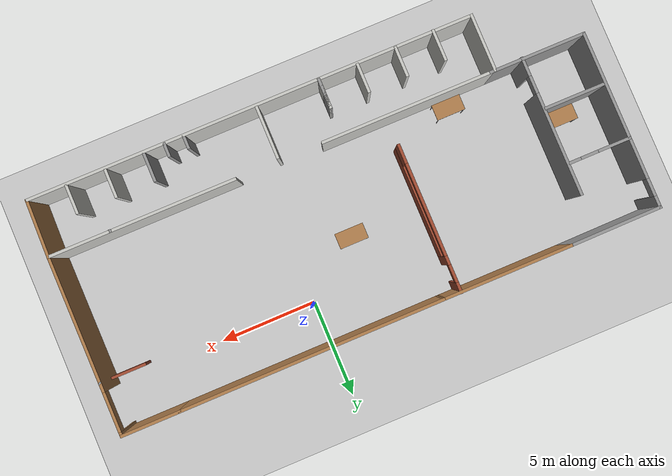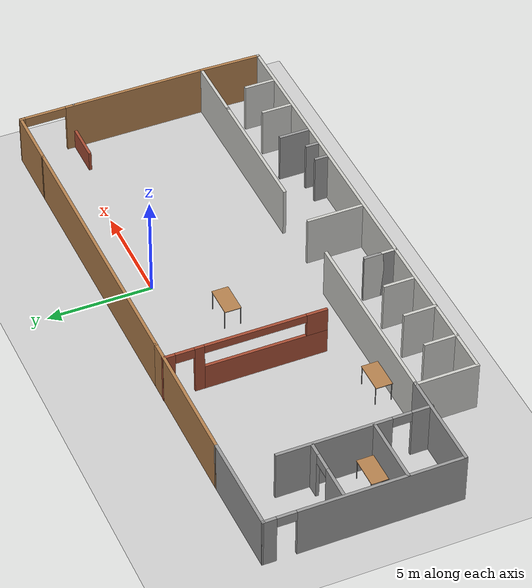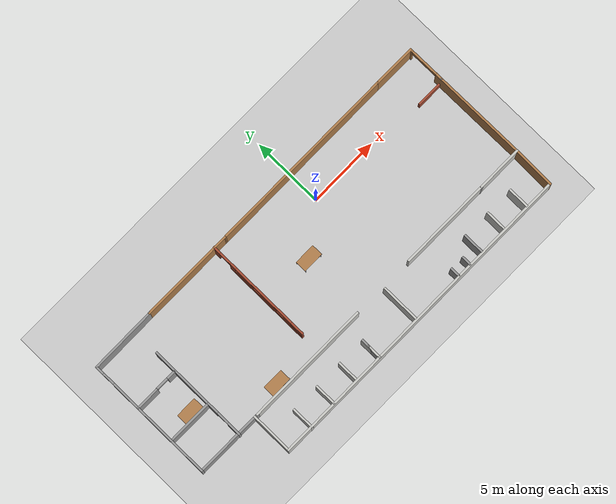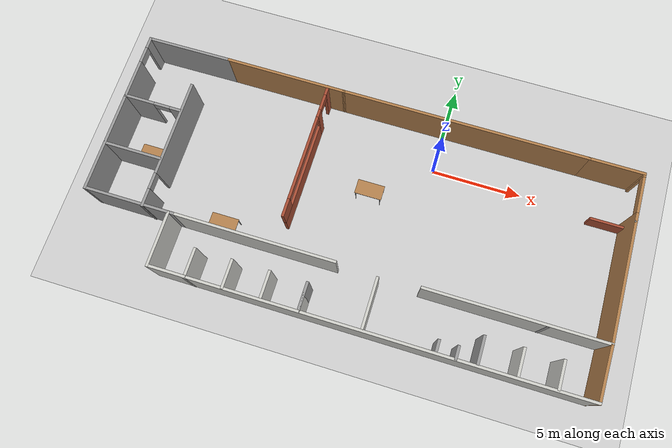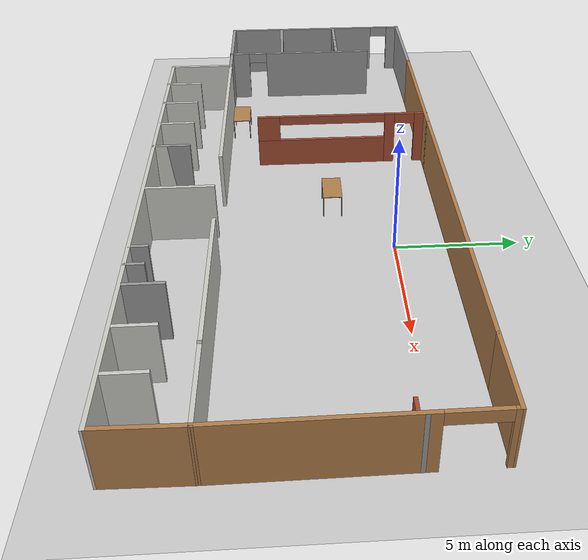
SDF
<sdf version="1.6">
 <world name="default">
  <model name="ground_plane">
   <static>1</static>
   <link name="link">
    <collision name="collision">
     <geometry><plane><normal>0 0 1</normal><size>100 100</size></plane></geometry>
     <surface><friction><ode><mu>100</mu><mu2>50</mu2></ode></friction></surface>
    </collision>
    <visual name="visual">
     <cast_shadows>0</cast_shadows>
     <geometry><plane><normal>0 0 1</normal><size>100 100</size></plane></geometry>
     <material>
      <script><uri>file://media/materials/scripts/gazebo.material</uri><name>Gazebo/Grey</name></script>
     </material>
    </visual>
   </link>
  </model>
  <model name="rest">
   <pose>-3.19031 -3.86827 0 0 -0 0</pose>
   <link name="Wall_105">
    <collision name="Wall_105_Collision">
     <geometry><box><size>1.5 0.15 2.5</size></box></geometry>
     <pose>0 0 1.25 0 -0 0</pose>
    </collision>
    <visual name="Wall_105_Visual">
     <pose>0 0 1.25 0 -0 0</pose>
     <geometry><box><size>1.5 0.15 2.5</size></box></geometry>
     <material>
      <script><uri>file://media/materials/scripts/gazebo.material</uri><name>Gazebo/CeilingTiled</name></script>
      <ambient>1 1 1 1</ambient>
     </material>
     <meta><layer>0</layer></meta>
    </visual>
    <pose>9.84331 -5.22473 0 0 -0 1.5708</pose>
   </link>
   <link name="Wall_107">
    <collision name="Wall_107_Collision">
     <geometry><box><size>1.538 0.15 2.5</size></box></geometry>
     <pose>0 0 1.25 0 -0 0</pose>
    </collision>
    <visual name="Wall_107_Visual">
     <pose>0 0 1.25 0 -0 0</pose>
     <geometry><box><size>1.538 0.15 2.5</size></box></geometry>
     <material>
      <script><uri>file://media/materials/scripts/gazebo.material</uri><name>Gazebo/CeilingTiled</name></script>
      <ambient>1 1 1 1</ambient>
     </material>
     <meta><layer>0</layer></meta>
    </visual>
    <pose>11.8423 -5.24373 0 0 0 -1.5708</pose>
   </link>
   <link name="Wall_109">
    <collision name="Wall_109_Collision">
     <geometry><box><size>0.744777 0.15 2.5</size></box></geometry>
     <pose>0 0 1.25 0 -0 0</pose>
    </collision>
    <visual name="Wall_109_Visual">
     <pose>0 0 1.25 0 -0 0</pose>
     <geometry><box><size>0.744777 0.15 2.5</size></box></geometry>
     <material>
      <script><uri>file://media/materials/scripts/gazebo.material</uri><name>Gazebo/Grey</name></script>
      <ambient>1 1 1 1</ambient>
     </material>
     <meta><layer>0</layer></meta>
    </visual>
    <pose>6.76931 -5.68423 0 0 -0 1.5708</pose>
   </link>
   <link name="Wall_113">
    <collision name="Wall_113_Collision">
     <geometry><box><size>0.745 0.15 2.5</size></box></geometry>
     <pose>0 0 1.25 0 -0 0</pose>
    </collision>
    <visual name="Wall_113_Visual">
     <pose>0 0 1.25 0 -0 0</pose>
     <geometry><box><size>0.745 0.15 2.5</size></box></geometry>
     <material>
      <script><uri>file://media/materials/scripts/gazebo.material</uri><name>Gazebo/Grey</name></script>
      <ambient>1 1 1 1</ambient>
     </material>
     <meta><layer>0</layer></meta>
    </visual>
    <pose>5.76931 -5.68423 0 0 -0 1.5708</pose>
   </link>
   <link name="Wall_115">
    <collision name="Wall_115_Collision">
     <geometry><box><size>1.643 0.15 2.5</size></box></geometry>
     <pose>0 0 1.25 0 -0 0</pose>
    </collision>
    <visual name="Wall_115_Visual">
     <pose>0 0 1.25 0 -0 0</pose>
     <geometry><box><size>1.643 0.15 2.5</size></box></geometry>
     <material>
      <script><uri>file://media/materials/scripts/gazebo.material</uri><name>Gazebo/CeilingTiled</name></script>
      <ambient>1 1 1 1</ambient>
     </material>
     <meta><layer>0</layer></meta>
    </visual>
    <pose>-7.25669 -5.29623 0 0 0 -1.5708</pose>
   </link>
   <link name="Wall_117">
    <collision name="Wall_117_Collision">
     <geometry><box><size>1.59 0.15 2.5</size></box></geometry>
     <pose>0 0 1.25 0 -0 0</pose>
    </collision>
    <visual name="Wall_117_Visual">
     <pose>0 0 1.25 0 -0 0</pose>
     <geometry><box><size>1.59 0.15 2.5</size></box></geometry>
     <material>
      <script><uri>file://media/materials/scripts/gazebo.material</uri><name>Gazebo/CeilingTiled</name></script>
      <ambient>1 1 1 1</ambient>
     </material>
     <meta><layer>0</layer></meta>
    </visual>
    <pose>-5.25669 -5.26973 0 0 0 -1.5708</pose>
   </link>
   <link name="Wall_119">
    <collision name="Wall_119_Collision">
     <geometry><box><size>1.538 0.15 2.5</size></box></geometry>
     <pose>0 0 1.25 0 -0 0</pose>
    </collision>
    <visual name="Wall_119_Visual">
     <pose>0 0 1.25 0 -0 0</pose>
     <geometry><box><size>1.538 0.15 2.5</size></box></geometry>
     <material>
      <script><uri>file://media/materials/scripts/gazebo.material</uri><name>Gazebo/CeilingTiled</name></script>
      <ambient>1 1 1 1</ambient>
     </material>
     <meta><layer>0</layer></meta>
    </visual>
    <pose>-3.25669 -5.24373 0 0 0 -1.5708</pose>
   </link>
   <link name="Wall_121">
    <collision name="Wall_121_Collision">
     <geometry><box><size>1.59 0.15 2.5</size></box></geometry>
     <pose>0 0 1.25 0 -0 0</pose>
    </collision>
    <visual name="Wall_121_Visual">
     <pose>0 0 1.25 0 -0 0</pose>
     <geometry><box><size>1.59 0.15 2.5</size></box></geometry>
     <material>
      <script><uri>file://media/materials/scripts/gazebo.material</uri><name>Gazebo/Grey</name></script>
      <ambient>1 1 1 1</ambient>
     </material>
     <meta><layer>0</layer></meta>
    </visual>
    <pose>-1.25669 -5.26973 0 0 0 -1.5708</pose>
   </link>
   <link name="Wall_122">
    <collision name="Wall_122_Collision">
     <geometry><box><size>1.59 0.15 2.5</size></box></geometry>
     <pose>0 0 1.25 0 -0 0</pose>
    </collision>
    <visual name="Wall_122_Visual">
     <pose>0 0 1.25 0 -0 0</pose>
     <geometry><box><size>1.59 0.15 2.5</size></box></geometry>
     <material>
      <script><uri>file://media/materials/scripts/gazebo.material</uri><name>Gazebo/CeilingTiled</name></script>
      <ambient>1 1 1 1</ambient>
     </material>
     <meta><layer>0</layer></meta>
    </visual>
    <pose>-1.25669 -5.26973 0 0 -0 1.5708</pose>
   </link>
   <link name="Wall_125">
    <collision name="Wall_125_Collision">
     <geometry><box><size>4.79 0.15 2.5</size></box></geometry>
     <pose>0 0 1.25 0 -0 0</pose>
    </collision>
    <visual name="Wall_125_Visual">
     <pose>0 0 1.25 0 -0 0</pose>
     <geometry><box><size>4.79 0.15 2.5</size></box></geometry>
     <material>
      <script><uri>file://media/materials/scripts/gazebo.material</uri><name>Gazebo/Grey</name></script>
      <ambient>1 1 1 1</ambient>
     </material>
     <meta><layer>0</layer></meta>
    </visual>
    <pose>-11.5766 5.9975 0 0 0 -3.13393</pose>
   </link>
   <link name="Wall_126">
    <pose>-13.8966 1.42972 0 0 0 -1.5708</pose>
    <visual name="Wall_126_Visual_0">
     <pose>-4.29481 0 1.25 0 -0 0</pose>
     <geometry><box><size>0.660381 0.15 2.5</size></box></geometry>
     <material>
      <script><uri>file://media/materials/scripts/gazebo.material</uri><name>Gazebo/Grey</name></script>
      <ambient>1 1 1 1</ambient>
     </material>
     <meta><layer>0</layer></meta>
    </visual>
    <collision name="Wall_126_Collision_0">
     <geometry><box><size>0.660381 0.15 2.5</size></box></geometry>
     <pose>-4.29481 0 1.25 0 -0 0</pose>
    </collision>
    <visual name="Wall_126_Visual_1">
     <pose>0.780191 0 1.25 0 -0 0</pose>
     <geometry><box><size>7.68962 0.15 2.5</size></box></geometry>
     <material>
      <script><uri>file://media/materials/scripts/gazebo.material</uri><name>Gazebo/Grey</name></script>
      <ambient>1 1 1 1</ambient>
     </material>
     <meta><layer>0</layer></meta>
    </visual>
    <collision name="Wall_126_Collision_1">
     <geometry><box><size>7.68962 0.15 2.5</size></box></geometry>
     <pose>0.780191 0 1.25 0 -0 0</pose>
    </collision>
    <visual name="Wall_126_Visual_2">
     <pose>-3.51462 0 2.25 0 -0 0</pose>
     <geometry><box><size>0.9 0.15 0.5</size></box></geometry>
     <material>
      <script><uri>file://media/materials/scripts/gazebo.material</uri><name>Gazebo/Grey</name></script>
      <ambient>1 1 1 1</ambient>
     </material>
     <meta><layer>0</layer></meta>
    </visual>
    <collision name="Wall_126_Collision_2">
     <geometry><box><size>0.9 0.15 0.5</size></box></geometry>
     <pose>-3.51462 0 2.25 0 -0 0</pose>
    </collision>
   </link>
   <link name="Wall_128">
    <collision name="Wall_128_Collision">
     <geometry><box><size>5 0.15 2.5</size></box></geometry>
     <pose>0 0 1.25 0 -0 0</pose>
    </collision>
    <visual name="Wall_128_Visual">
     <pose>0 0 1.25 0 -0 0</pose>
     <geometry><box><size>5 0.15 2.5</size></box></geometry>
     <material>
      <script><uri>file://media/materials/scripts/gazebo.material</uri><name>Gazebo/Grey</name></script>
      <ambient>1 1 1 1</ambient>
     </material>
     <meta><layer>0</layer></meta>
    </visual>
    <pose>-11.4532 -3.11873 0 0 -0 3.14159</pose>
   </link>
   <link name="Wall_132">
    <pose>-10.6853 0.397406 0 0 0 -1.5708</pose>
    <visual name="Wall_132_Visual_0">
     <pose>-0.952875 0 1.25 0 -0 0</pose>
     <geometry><box><size>5.34425 0.15 2.5</size></box></geometry>
     <material>
      <script><uri>file://media/materials/scripts/gazebo.material</uri><name>Gazebo/Grey</name></script>
      <ambient>1 1 1 1</ambient>
     </material>
     <meta><layer>0</layer></meta>
    </visual>
    <collision name="Wall_132_Collision_0">
     <geometry><box><size>5.34425 0.15 2.5</size></box></geometry>
     <pose>-0.952875 0 1.25 0 -0 0</pose>
    </collision>
    <visual name="Wall_132_Visual_1">
     <pose>3.12213 0 1.25 0 -0 0</pose>
     <geometry><box><size>1.00575 0.15 2.5</size></box></geometry>
     <material>
      <script><uri>file://media/materials/scripts/gazebo.material</uri><name>Gazebo/Grey</name></script>
      <ambient>1 1 1 1</ambient>
     </material>
     <meta><layer>0</layer></meta>
    </visual>
    <collision name="Wall_132_Collision_1">
     <geometry><box><size>1.00575 0.15 2.5</size></box></geometry>
     <pose>3.12213 0 1.25 0 -0 0</pose>
    </collision>
    <visual name="Wall_132_Visual_2">
     <pose>2.16925 0 2.25 0 -0 0</pose>
     <geometry><box><size>0.9 0.15 0.5</size></box></geometry>
     <material>
      <script><uri>file://media/materials/scripts/gazebo.material</uri><name>Gazebo/Grey</name></script>
      <ambient>1 1 1 1</ambient>
     </material>
     <meta><layer>0</layer></meta>
    </visual>
    <collision name="Wall_132_Collision_2">
     <geometry><box><size>0.9 0.15 0.5</size></box></geometry>
     <pose>2.16925 0 2.25 0 -0 0</pose>
    </collision>
   </link>
   <link name="Wall_134">
    <collision name="Wall_134_Collision">
     <geometry><box><size>3.25 0.15 2.5</size></box></geometry>
     <pose>0 0 1.25 0 -0 0</pose>
    </collision>
    <visual name="Wall_134_Visual">
     <pose>0 0 1.25 0 -0 0</pose>
     <geometry><box><size>3.25 0.15 2.5</size></box></geometry>
     <material>
      <script><uri>file://media/materials/scripts/gazebo.material</uri><name>Gazebo/Grey</name></script>
      <ambient>1 1 1 1</ambient>
     </material>
     <meta><layer>0</layer></meta>
    </visual>
    <pose>-12.3185 -0.49507 0 0 -0 0</pose>
   </link>
   <link name="Wall_137">
    <pose>-12.336 2.3733 0 0 -0 0</pose>
    <visual name="Wall_137_Visual_0">
     <pose>-0.771842 0 1.25 0 -0 0</pose>
     <geometry><box><size>1.70632 0.15 2.5</size></box></geometry>
     <material>
      <script><uri>file://media/materials/scripts/gazebo.material</uri><name>Gazebo/Grey</name></script>
      <ambient>1 1 1 1</ambient>
     </material>
     <meta><layer>0</layer></meta>
    </visual>
    <collision name="Wall_137_Collision_0">
     <geometry><box><size>1.70632 0.15 2.5</size></box></geometry>
     <pose>-0.771842 0 1.25 0 -0 0</pose>
    </collision>
    <visual name="Wall_137_Visual_1">
     <pose>1.30316 0 1.25 0 -0 0</pose>
     <geometry><box><size>0.643683 0.15 2.5</size></box></geometry>
     <material>
      <script><uri>file://media/materials/scripts/gazebo.material</uri><name>Gazebo/Grey</name></script>
      <ambient>1 1 1 1</ambient>
     </material>
     <meta><layer>0</layer></meta>
    </visual>
    <collision name="Wall_137_Collision_1">
     <geometry><box><size>0.643683 0.15 2.5</size></box></geometry>
     <pose>1.30316 0 1.25 0 -0 0</pose>
    </collision>
    <visual name="Wall_137_Visual_2">
     <pose>0.531317 0 2.25 0 -0 0</pose>
     <geometry><box><size>0.9 0.15 0.5</size></box></geometry>
     <material>
      <script><uri>file://media/materials/scripts/gazebo.material</uri><name>Gazebo/Grey</name></script>
      <ambient>1 1 1 1</ambient>
     </material>
     <meta><layer>0</layer></meta>
    </visual>
    <collision name="Wall_137_Collision_2">
     <geometry><box><size>0.9 0.15 0.5</size></box></geometry>
     <pose>0.531317 0 2.25 0 -0 0</pose>
    </collision>
   </link>
   <link name="Wall_3">
    <collision name="Wall_3_Collision">
     <geometry><box><size>13.697 0.15 2.5</size></box></geometry>
     <pose>0 0 1.25 0 -0 0</pose>
    </collision>
    <visual name="Wall_3_Visual">
     <pose>0 0 1.25 0 -0 0</pose>
     <geometry><box><size>13.697 0.15 2.5</size></box></geometry>
     <material>
      <script><uri>file://media/materials/scripts/gazebo.material</uri><name>Gazebo/Wood</name></script>
      <ambient>1 1 1 1</ambient>
     </material>
     <meta><layer>0</layer></meta>
    </visual>
    <pose>4.11681 6.02877 0 0 0 -3.1396</pose>
   </link>
   <link name="Wall_45">
    <collision name="Wall_45_Collision">
     <geometry><box><size>3.1 0.15 2.5</size></box></geometry>
     <pose>0 0 1.25 0 -0 0</pose>
    </collision>
    <visual name="Wall_45_Visual">
     <pose>0 0 1.25 0 -0 0</pose>
     <geometry><box><size>3.1 0.15 2.5</size></box></geometry>
     <material>
      <script><uri>file://media/materials/scripts/gazebo.material</uri><name>Gazebo/Wood</name></script>
      <ambient>1 1 1 1</ambient>
     </material>
     <meta><layer>0</layer></meta>
    </visual>
    <pose>12.3653 6.04227 0 0 -0 0</pose>
   </link>
   <link name="Wall_56">
    <collision name="Wall_56_Collision">
     <geometry><box><size>0.15 0.15 2.5</size></box></geometry>
     <pose>0 0 1.25 0 -0 0</pose>
    </collision>
    <visual name="Wall_56_Visual">
     <pose>0 0 1.25 0 -0 0</pose>
     <geometry><box><size>0.15 0.15 2.5</size></box></geometry>
     <material>
      <script><uri>file://media/materials/scripts/gazebo.material</uri><name>Gazebo/Grey</name></script>
      <ambient>1 1 1 1</ambient>
     </material>
     <meta><layer>0</layer></meta>
    </visual>
    <pose>10.7303 -3.13173 0 0 -0 0</pose>
   </link>
   <link name="Wall_67">
    <collision name="Wall_67_Collision">
     <geometry><box><size>6.75 0.15 2.5</size></box></geometry>
     <pose>0 0 1.25 0 -0 0</pose>
    </collision>
    <visual name="Wall_67_Visual">
     <pose>0 0 1.25 0 -0 0</pose>
     <geometry><box><size>6.75 0.15 2.5</size></box></geometry>
     <material>
      <script><uri>file://media/materials/scripts/gazebo.material</uri><name>Gazebo/Wood</name></script>
      <ambient>1 1 1 1</ambient>
     </material>
     <meta><layer>0</layer></meta>
    </visual>
    <pose>-5.95669 6.01527 0 0 -0 3.14159</pose>
   </link>
   <link name="Wall_73">
    <collision name="Wall_73_Collision">
     <geometry><box><size>0.15 0.15 2.5</size></box></geometry>
     <pose>0 0 1.25 0 -0 0</pose>
    </collision>
    <visual name="Wall_73_Visual">
     <pose>0 0 1.25 0 -0 0</pose>
     <geometry><box><size>0.15 0.15 2.5</size></box></geometry>
     <material>
      <script><uri>file://media/materials/scripts/gazebo.material</uri><name>Gazebo/Grey</name></script>
      <ambient>1 1 1 1</ambient>
     </material>
     <meta><layer>0</layer></meta>
    </visual>
    <pose>13.8608 3.37641 0 0 -0 0</pose>
   </link>
   <link name="Wall_76">
    <pose>13.868 1.46177 0 0 0 -1.56474</pose>
    <visual name="Wall_76_Visual_0">
     <pose>-4.52154 0 1.25 0 -0 0</pose>
     <geometry><box><size>0.268095 0.15 2.5</size></box></geometry>
     <material>
      <script><uri>file://media/materials/scripts/gazebo.material</uri><name>Gazebo/Wood</name></script>
      <ambient>1 1 1 1</ambient>
     </material>
     <meta><layer>0</layer></meta>
    </visual>
    <collision name="Wall_76_Collision_0">
     <geometry><box><size>0.268095 0.15 2.5</size></box></geometry>
     <pose>-4.52154 0 1.25 0 -0 0</pose>
    </collision>
    <visual name="Wall_76_Visual_1">
     <pose>1.14378 0 1.25 0 -0 0</pose>
     <geometry><box><size>7.02361 0.15 2.5</size></box></geometry>
     <material>
      <script><uri>file://media/materials/scripts/gazebo.material</uri><name>Gazebo/Wood</name></script>
      <ambient>1 1 1 1</ambient>
     </material>
     <meta><layer>0</layer></meta>
    </visual>
    <collision name="Wall_76_Collision_1">
     <geometry><box><size>7.02361 0.15 2.5</size></box></geometry>
     <pose>1.14378 0 1.25 0 -0 0</pose>
    </collision>
    <visual name="Wall_76_Visual_2">
     <pose>-3.37776 0 2.25 0 -0 0</pose>
     <geometry><box><size>2.01946 0.15 0.5</size></box></geometry>
     <material>
      <script><uri>file://media/materials/scripts/gazebo.material</uri><name>Gazebo/Wood</name></script>
      <ambient>1 1 1 1</ambient>
     </material>
     <meta><layer>0</layer></meta>
    </visual>
    <collision name="Wall_76_Collision_2">
     <geometry><box><size>2.01946 0.15 0.5</size></box></geometry>
     <pose>-3.37776 0 2.25 0 -0 0</pose>
    </collision>
   </link>
   <link name="Wall_78">
    <pose>-3.55923 2.22695 0 0 0 -1.5708</pose>
    <visual name="Wall_78_Visual_0">
     <pose>-3.58241 0 1.25 0 -0 0</pose>
     <geometry><box><size>0.585178 0.15 2.5</size></box></geometry>
     <material>
      <script><uri>file://media/materials/scripts/gazebo.material</uri><name>Gazebo/Bricks</name></script>
      <ambient>1 1 1 1</ambient>
     </material>
     <meta><layer>0</layer></meta>
    </visual>
    <collision name="Wall_78_Collision_0">
     <geometry><box><size>0.585178 0.15 2.5</size></box></geometry>
     <pose>-3.58241 0 1.25 0 -0 0</pose>
    </collision>
    <visual name="Wall_78_Visual_1">
     <pose>-2.16112 0 1.25 0 -0 0</pose>
     <geometry><box><size>0.457397 0.15 2.5</size></box></geometry>
     <material>
      <script><uri>file://media/materials/scripts/gazebo.material</uri><name>Gazebo/Bricks</name></script>
      <ambient>1 1 1 1</ambient>
     </material>
     <meta><layer>0</layer></meta>
    </visual>
    <collision name="Wall_78_Collision_1">
     <geometry><box><size>0.457397 0.15 2.5</size></box></geometry>
     <pose>-2.16112 0 1.25 0 -0 0</pose>
    </collision>
    <visual name="Wall_78_Visual_2">
     <pose>0.971288 0 0.65 0 -0 0</pose>
     <geometry><box><size>5.80743 0.15 1.3</size></box></geometry>
     <material>
      <script><uri>file://media/materials/scripts/gazebo.material</uri><name>Gazebo/Bricks</name></script>
      <ambient>1 1 1 1</ambient>
     </material>
     <meta><layer>0</layer></meta>
    </visual>
    <collision name="Wall_78_Collision_2">
     <geometry><box><size>5.80743 0.15 1.3</size></box></geometry>
     <pose>0.971288 0 0.65 0 -0 0</pose>
    </collision>
    <visual name="Wall_78_Visual_3">
     <pose>3.37129 0 1.9 0 -0 0</pose>
     <geometry><box><size>1.00743 0.15 1.2</size></box></geometry>
     <material>
      <script><uri>file://media/materials/scripts/gazebo.material</uri><name>Gazebo/Bricks</name></script>
      <ambient>1 1 1 1</ambient>
     </material>
     <meta><layer>0</layer></meta>
    </visual>
    <collision name="Wall_78_Collision_3">
     <geometry><box><size>1.00743 0.15 1.2</size></box></geometry>
     <pose>3.37129 0 1.9 0 -0 0</pose>
    </collision>
    <visual name="Wall_78_Visual_4">
     <pose>-2.83982 0 2.25 0 -0 0</pose>
     <geometry><box><size>0.9 0.15 0.5</size></box></geometry>
     <material>
      <script><uri>file://media/materials/scripts/gazebo.material</uri><name>Gazebo/Bricks</name></script>
      <ambient>1 1 1 1</ambient>
     </material>
     <meta><layer>0</layer></meta>
    </visual>
    <collision name="Wall_78_Collision_4">
     <geometry><box><size>0.9 0.15 0.5</size></box></geometry>
     <pose>-2.83982 0 2.25 0 -0 0</pose>
    </collision>
    <visual name="Wall_78_Visual_5">
     <pose>0.467575 0 2.3 0 -0 0</pose>
     <geometry><box><size>4.8 0.15 0.4</size></box></geometry>
     <material>
      <script><uri>file://media/materials/scripts/gazebo.material</uri><name>Gazebo/Bricks</name></script>
      <ambient>1 1 1 1</ambient>
     </material>
     <meta><layer>0</layer></meta>
    </visual>
    <collision name="Wall_78_Collision_5">
     <geometry><box><size>4.8 0.15 0.4</size></box></geometry>
     <pose>0.467575 0 2.3 0 -0 0</pose>
    </collision>
   </link>
   <link name="Wall_80">
    <collision name="Wall_80_Collision">
     <geometry><box><size>1.99 0.14 1</size></box></geometry>
     <pose>0 0 0.5 0 -0 0</pose>
    </collision>
    <visual name="Wall_80_Visual">
     <pose>0 0 0.5 0 -0 0</pose>
     <geometry><box><size>1.99 0.14 1</size></box></geometry>
     <material>
      <script><uri>file://media/materials/scripts/gazebo.material</uri><name>Gazebo/Bricks</name></script>
      <ambient>1 1 1 1</ambient>
     </material>
     <meta><layer>0</layer></meta>
    </visual>
    <pose>12.9358 3.3939 0 0 -0 3.14159</pose>
   </link>
   <link name="Wall_84">
    <collision name="Wall_84_Collision">
     <geometry><box><size>3.04349 0.15 2.5</size></box></geometry>
     <pose>0 0 1.25 0 -0 0</pose>
    </collision>
    <visual name="Wall_84_Visual">
     <pose>0 0 1.25 0 -0 0</pose>
     <geometry><box><size>3.04349 0.15 2.5</size></box></geometry>
     <material>
      <script><uri>file://media/materials/scripts/gazebo.material</uri><name>Gazebo/CeilingTiled</name></script>
      <ambient>1 1 1 1</ambient>
     </material>
     <meta><layer>0</layer></meta>
    </visual>
    <pose>-9.25669 -4.57798 0 0 0 -1.5708</pose>
   </link>
   <link name="Wall_85">
    <collision name="Wall_85_Collision">
     <geometry><box><size>23.25 0.15 2.5</size></box></geometry>
     <pose>0 0 1.25 0 -0 0</pose>
    </collision>
    <visual name="Wall_85_Visual">
     <pose>0 0 1.25 0 -0 0</pose>
     <geometry><box><size>23.25 0.15 2.5</size></box></geometry>
     <material>
      <script><uri>file://media/materials/scripts/gazebo.material</uri><name>Gazebo/CeilingTiled</name></script>
      <ambient>1 1 1 1</ambient>
     </material>
     <meta><layer>0</layer></meta>
    </visual>
    <pose>2.29331 -6.02473 0 0 -0 0</pose>
   </link>
   <link name="Wall_86">
    <collision name="Wall_86_Collision">
     <geometry><box><size>3.05647 0.15 2.5</size></box></geometry>
     <pose>0 0 1.25 0 -0 0</pose>
    </collision>
    <visual name="Wall_86_Visual">
     <pose>0 0 1.25 0 -0 0</pose>
     <geometry><box><size>3.05647 0.15 2.5</size></box></geometry>
     <material>
      <script><uri>file://media/materials/scripts/gazebo.material</uri><name>Gazebo/Wood</name></script>
      <ambient>1 1 1 1</ambient>
     </material>
     <meta><layer>0</layer></meta>
    </visual>
    <pose>13.8695 -4.57173 0 0 -0 1.55274</pose>
   </link>
   <link name="Wall_93">
    <collision name="Wall_93_Collision">
     <geometry><box><size>8.93004 0.15 2.5</size></box></geometry>
     <pose>0 0 1.25 0 -0 0</pose>
    </collision>
    <visual name="Wall_93_Visual">
     <pose>0 0 1.25 0 -0 0</pose>
     <geometry><box><size>8.93004 0.15 2.5</size></box></geometry>
     <material>
      <script><uri>file://media/materials/scripts/gazebo.material</uri><name>Gazebo/CeilingTiled</name></script>
      <ambient>1 1 1 1</ambient>
     </material>
     <meta><layer>0</layer></meta>
    </visual>
    <pose>-4.65571 -3.11873 0 0 -0 3.14159</pose>
   </link>
   <link name="Wall_95">
    <collision name="Wall_95_Collision">
     <geometry><box><size>9.75 0.15 2.5</size></box></geometry>
     <pose>0 0 1.25 0 -0 0</pose>
    </collision>
    <visual name="Wall_95_Visual">
     <pose>0 0 1.25 0 -0 0</pose>
     <geometry><box><size>9.75 0.15 2.5</size></box></geometry>
     <material>
      <script><uri>file://media/materials/scripts/gazebo.material</uri><name>Gazebo/CeilingTiled</name></script>
      <ambient>1 1 1 1</ambient>
     </material>
     <meta><layer>0</layer></meta>
    </visual>
    <pose>9.09578 -3.11873 0 0 -0 0</pose>
   </link>
   <link name="Wall_97">
    <collision name="Wall_97_Collision">
     <geometry><box><size>2.75 0.15 2.5</size></box></geometry>
     <pose>0 0 1.25 0 -0 0</pose>
    </collision>
    <visual name="Wall_97_Visual">
     <pose>0 0 1.25 0 -0 0</pose>
     <geometry><box><size>2.75 0.15 2.5</size></box></geometry>
     <material>
      <script><uri>file://media/materials/scripts/gazebo.material</uri><name>Gazebo/CeilingTiled</name></script>
      <ambient>1 1 1 1</ambient>
     </material>
     <meta><layer>0</layer></meta>
    </visual>
    <pose>2.01248 -4.59348 0 0 0 -1.5708</pose>
   </link>
   <link name="Wall_99">
    <collision name="Wall_99_Collision">
     <geometry><box><size>1.5 0.15 2.5</size></box></geometry>
     <pose>0 0 1.25 0 -0 0</pose>
    </collision>
    <visual name="Wall_99_Visual">
     <pose>0 0 1.25 0 -0 0</pose>
     <geometry><box><size>1.5 0.15 2.5</size></box></geometry>
     <material>
      <script><uri>file://media/materials/scripts/gazebo.material</uri><name>Gazebo/Grey</name></script>
      <ambient>1 1 1 1</ambient>
     </material>
     <meta><layer>0</layer></meta>
    </visual>
    <pose>7.84331 -5.22473 0 0 -0 1.5708</pose>
   </link>
   <static>1</static>
  </model>
  <model name="table_0">
   <static>1</static>
   <link name="link">
    <collision name="surface">
     <pose>0 0 1 0 -0 0</pose>
     <geometry><box><size>1.5 0.8 0.03</size></box></geometry>
     <surface><friction><ode><mu>0.6</mu><mu2>0.6</mu2></ode></friction></surface>
    </collision>
    <visual name="visual1">
     <pose>0 0 1 0 -0 0</pose>
     <geometry><box><size>1.5 0.8 0.03</size></box></geometry>
     <material>
      <script><uri>file://media/materials/scripts/gazebo.material</uri><name>Gazebo/Wood</name></script>
     </material>
    </visual>
    <collision name="front_left_leg">
     <pose>0.68 0.38 0.5 0 -0 0</pose>
     <geometry><cylinder><radius>0.02</radius><length>1</length></cylinder></geometry>
    </collision>
    <visual name="front_left_leg">
     <pose>0.68 0.38 0.5 0 -0 0</pose>
     <geometry><cylinder><radius>0.02</radius><length>1</length></cylinder></geometry>
     <material>
      <script><uri>file://media/materials/scripts/gazebo.material</uri><name>Gazebo/Grey</name></script>
     </material>
    </visual>
    <collision name="front_right_leg">
     <pose>0.68 -0.38 0.5 0 -0 0</pose>
     <geometry><cylinder><radius>0.02</radius><length>1</length></cylinder></geometry>
    </collision>
    <visual name="front_right_leg">
     <pose>0.68 -0.38 0.5 0 -0 0</pose>
     <geometry><cylinder><radius>0.02</radius><length>1</length></cylinder></geometry>
     <material>
      <script><uri>file://media/materials/scripts/gazebo.material</uri><name>Gazebo/Grey</name></script>
     </material>
    </visual>
    <collision name="back_right_leg">
     <pose>-0.68 -0.38 0.5 0 -0 0</pose>
     <geometry><cylinder><radius>0.02</radius><length>1</length></cylinder></geometry>
    </collision>
    <visual name="back_right_leg">
     <pose>-0.68 -0.38 0.5 0 -0 0</pose>
     <geometry><cylinder><radius>0.02</radius><length>1</length></cylinder></geometry>
     <material>
      <script><uri>file://media/materials/scripts/gazebo.material</uri><name>Gazebo/Grey</name></script>
     </material>
    </visual>
    <collision name="back_left_leg">
     <pose>-0.68 0.38 0.5 0 -0 0</pose>
     <geometry><cylinder><radius>0.02</radius><length>1</length></cylinder></geometry>
    </collision>
    <visual name="back_left_leg">
     <pose>-0.68 0.38 0.5 0 -0 0</pose>
     <geometry><cylinder><radius>0.02</radius><length>1</length></cylinder></geometry>
     <material>
      <script><uri>file://media/materials/scripts/gazebo.material</uri><name>Gazebo/Grey</name></script>
     </material>
    </visual>
   </link>
   <pose>-3.01466 -2.3576 0 0 -0 0</pose>
  </model>
  <model name="table_3">
   <static>1</static>
   <link name="link">
    <collision name="surface">
     <pose>0 0 1 0 -0 0</pose>
     <geometry><box><size>1.5 0.8 0.03</size></box></geometry>
     <surface><friction><ode><mu>0.6</mu><mu2>0.6</mu2></ode></friction></surface>
    </collision>
    <visual name="visual1">
     <pose>0 0 1 0 -0 0</pose>
     <geometry><box><size>1.5 0.8 0.03</size></box></geometry>
     <material>
      <script><uri>file://media/materials/scripts/gazebo.material</uri><name>Gazebo/Wood</name></script>
     </material>
    </visual>
    <collision name="front_left_leg">
     <pose>0.68 0.38 0.5 0 -0 0</pose>
     <geometry><cylinder><radius>0.02</radius><length>1</length></cylinder></geometry>
    </collision>
    <visual name="front_left_leg">
     <pose>0.68 0.38 0.5 0 -0 0</pose>
     <geometry><cylinder><radius>0.02</radius><length>1</length></cylinder></geometry>
     <material>
      <script><uri>file://media/materials/scripts/gazebo.material</uri><name>Gazebo/Grey</name></script>
     </material>
    </visual>
    <collision name="front_right_leg">
     <pose>0.68 -0.38 0.5 0 -0 0</pose>
     <geometry><cylinder><radius>0.02</radius><length>1</length></cylinder></geometry>
    </collision>
    <visual name="front_right_leg">
     <pose>0.68 -0.38 0.5 0 -0 0</pose>
     <geometry><cylinder><radius>0.02</radius><length>1</length></cylinder></geometry>
     <material>
      <script><uri>file://media/materials/scripts/gazebo.material</uri><name>Gazebo/Grey</name></script>
     </material>
    </visual>
    <collision name="back_right_leg">
     <pose>-0.68 -0.38 0.5 0 -0 0</pose>
     <geometry><cylinder><radius>0.02</radius><length>1</length></cylinder></geometry>
    </collision>
    <visual name="back_right_leg">
     <pose>-0.68 -0.38 0.5 0 -0 0</pose>
     <geometry><cylinder><radius>0.02</radius><length>1</length></cylinder></geometry>
     <material>
      <script><uri>file://media/materials/scripts/gazebo.material</uri><name>Gazebo/Grey</name></script>
     </material>
    </visual>
    <collision name="back_left_leg">
     <pose>-0.68 0.38 0.5 0 -0 0</pose>
     <geometry><cylinder><radius>0.02</radius><length>1</length></cylinder></geometry>
    </collision>
    <visual name="back_left_leg">
     <pose>-0.68 0.38 0.5 0 -0 0</pose>
     <geometry><cylinder><radius>0.02</radius><length>1</length></cylinder></geometry>
     <material>
      <script><uri>file://media/materials/scripts/gazebo.material</uri><name>Gazebo/Grey</name></script>
     </material>
    </visual>
   </link>
   <pose>-9.95885 -6.40768 0 0 -0 0</pose>
  </model>
  <model name="table_4">
   <static>1</static>
   <link name="link">
    <collision name="surface">
     <pose>0 0 1 0 -0 0</pose>
     <geometry><box><size>1.5 0.8 0.03</size></box></geometry>
     <surface><friction><ode><mu>0.6</mu><mu2>0.6</mu2></ode></friction></surface>
    </collision>
    <visual name="visual1">
     <pose>0 0 1 0 -0 0</pose>
     <geometry><box><size>1.5 0.8 0.03</size></box></geometry>
     <material>
      <script><uri>file://media/materials/scripts/gazebo.material</uri><name>Gazebo/Wood</name></script>
     </material>
    </visual>
    <collision name="front_left_leg">
     <pose>0.68 0.38 0.5 0 -0 0</pose>
     <geometry><cylinder><radius>0.02</radius><length>1</length></cylinder></geometry>
    </collision>
    <visual name="front_left_leg">
     <pose>0.68 0.38 0.5 0 -0 0</pose>
     <geometry><cylinder><radius>0.02</radius><length>1</length></cylinder></geometry>
     <material>
      <script><uri>file://media/materials/scripts/gazebo.material</uri><name>Gazebo/Grey</name></script>
     </material>
    </visual>
    <collision name="front_right_leg">
     <pose>0.68 -0.38 0.5 0 -0 0</pose>
     <geometry><cylinder><radius>0.02</radius><length>1</length></cylinder></geometry>
    </collision>
    <visual name="front_right_leg">
     <pose>0.68 -0.38 0.5 0 -0 0</pose>
     <geometry><cylinder><radius>0.02</radius><length>1</length></cylinder></geometry>
     <material>
      <script><uri>file://media/materials/scripts/gazebo.material</uri><name>Gazebo/Grey</name></script>
     </material>
    </visual>
    <collision name="back_right_leg">
     <pose>-0.68 -0.38 0.5 0 -0 0</pose>
     <geometry><cylinder><radius>0.02</radius><length>1</length></cylinder></geometry>
    </collision>
    <visual name="back_right_leg">
     <pose>-0.68 -0.38 0.5 0 -0 0</pose>
     <geometry><cylinder><radius>0.02</radius><length>1</length></cylinder></geometry>
     <material>
      <script><uri>file://media/materials/scripts/gazebo.material</uri><name>Gazebo/Grey</name></script>
     </material>
    </visual>
    <collision name="back_left_leg">
     <pose>-0.68 0.38 0.5 0 -0 0</pose>
     <geometry><cylinder><radius>0.02</radius><length>1</length></cylinder></geometry>
    </collision>
    <visual name="back_left_leg">
     <pose>-0.68 0.38 0.5 0 -0 0</pose>
     <geometry><cylinder><radius>0.02</radius><length>1</length></cylinder></geometry>
     <material>
      <script><uri>file://media/materials/scripts/gazebo.material</uri><name>Gazebo/Grey</name></script>
     </material>
    </visual>
   </link>
   <pose>-14.9673 -3.812 0 0 -0 0</pose>
  </model>
 </world>
</sdf>
